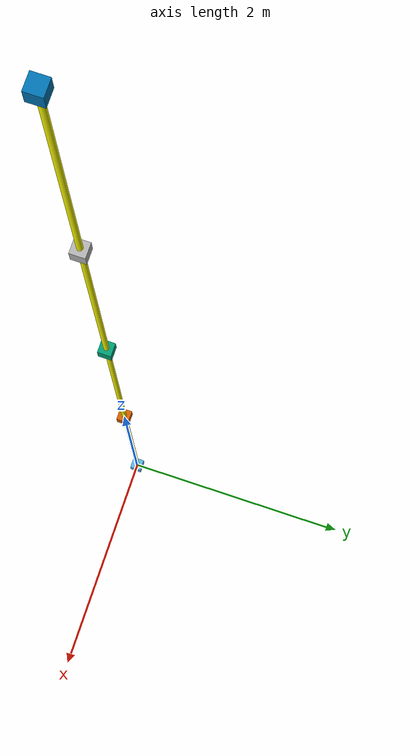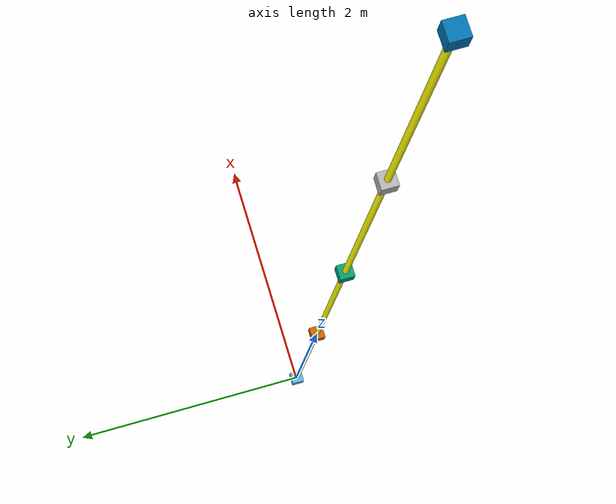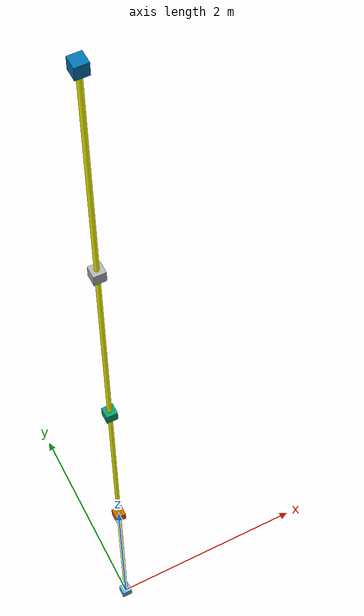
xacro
<?xml version="1.0"?>
<robot xmlns:xacro="http://www.ros.org/wiki/xacro" name="isaac_twin">

  <xacro:include filename="$(find isaac_sim_demo)/urdf/spherical_joint.xacro" />
  <xacro:include filename="$(find isaac_sim_demo)/urdf/link.xacro" />

  <!-- Include the cylinder macro -->
  <xacro:include filename="cylinder_macro.xacro" />

  <link name="base_link">
    <visual>
      <geometry>
        <box size="0.1 0.1 0"/>
      </geometry>
    </visual>
    <collision>
      <geometry>
        <box size="0.1 0.1 0"/>
      </geometry>
    </collision>
  </link>

  <xacro:spherical_joint prefix="spherical_1" parent="base_link" />

  <!-- Replace prismatic_joint_1 with a cylinder -->
  <xacro:cylinder_link parent_link="spherical_1_z" child_link="Drone1" prefix="cylinder1" cylinder_radius="0.02" cylinder_length="2"/>

  <xacro:temp_link name="Drone1" origin_xyz="0 0 0" origin_rpy="0 0 0" size="0.1 0.1 0.1" mass="0.1" />

  <xacro:spherical_joint prefix="spherical_2" parent="Drone1" />

  <!-- Replace prismatic_joint_2 with a cylinder -->
  <xacro:cylinder_link parent_link="spherical_2_z" child_link="Drone2" prefix="cylinder2" cylinder_radius="0.02" cylinder_length="2"/>

  <xacro:temp_link name="Drone2" origin_xyz="0 0 0" origin_rpy="0 0 0" size="0.1 0.1 0.1" mass="0.1" />

  <xacro:spherical_joint prefix="spherical_3" parent="Drone2" />

  <!-- Replace prismatic_joint_3 with a cylinder -->
  <xacro:cylinder_link parent_link="spherical_3_z" child_link="Drone3" prefix="cylinder3" cylinder_radius="0.02" cylinder_length="2"/>

  <xacro:temp_link name="Drone3" origin_xyz="0 0 0" origin_rpy="0 0 0" size="0.1 0.1 0.1" mass="0.1" />

  <xacro:spherical_joint prefix="spherical_4" parent="Drone3" />

  <!-- Replace prismatic_joint_4 with a cylinder -->
  <xacro:cylinder_link parent_link="spherical_4_z" child_link="Drone4" prefix="cylinder4" cylinder_radius="0.02" cylinder_length="2"/>

  <xacro:temp_link name="Drone4" origin_xyz="0 0 0" origin_rpy="0 0 0" size="0.1 0.1 0.1" mass="0.1" />

</robot>

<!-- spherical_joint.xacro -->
<robot xmlns:xacro="http://www.ros.org/wiki/xacro">
  <xacro:include filename="$(find isaac_sim_demo)/urdf/link.xacro" />

  <xacro:macro name="spherical_joint" params="prefix parent">

  <xacro:temp_link name="${prefix}_x" origin_xyz="0 0 0" origin_rpy="0 0 0" size="0.1 0.1 0.1" mass="0.1" />
  <xacro:temp_link name="${prefix}_y" origin_xyz="0 0 0" origin_rpy="0 0 0" size="0.1 0.1 0.1" mass="0.1" />
  <xacro:temp_link name="${prefix}_z" origin_xyz="0 0 0" origin_rpy="0 0 0" size="0.1 0.1 0.1" mass="0.1" />

  <joint name="${prefix}_x" type="revolute">
    <parent link="${parent}"/>
    <child link="${prefix}_x"/>
    <origin xyz="0 0 0.0" rpy="0 0 0"/>
    <axis xyz="1 0 0"/>
    <limit lower="-1.57" upper="1.57" effort="10" velocity="1.0"/>
  </joint>

  <joint name="${prefix}_y" type="revolute">
    <parent link="${prefix}_x"/>
    <child link="${prefix}_y"/>
    <origin xyz="0 0 0" rpy="0 0 0"/>
    <axis xyz="0 1 0"/>
    <limit lower="-1.57" upper="1.57" effort="10" velocity="1.0"/>
  </joint>

  <joint name="${prefix}_z" type="continuous">
    <parent link="${prefix}_y"/>
    <child link="${prefix}_z"/>
    <origin xyz="0 0 0" rpy="0 0 0"/>
    <axis xyz="0 0 1"/>
  </joint>
  </xacro:macro>

 </robot>

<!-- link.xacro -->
<robot xmlns:xacro="http://www.ros.org/wiki/xacro">

  <xacro:macro name="temp_link" params="name origin_xyz origin_rpy size mass ">

    <xacro:property name="dim" value="${size.split(' ')}"/>
    <xacro:property name="L" value="${dim[0]}"/>
    <xacro:property name="W" value="${dim[1]}"/>
    <xacro:property name="H" value="${dim[2]}"/>

    <!-- Calculate inertia tensor components -->
    <xacro:property name="Ixx" value="${(1/12.0) * mass * (W*W + H*H)}"/>
    <xacro:property name="Iyy" value="${(1/12.0) * mass * (L*L + H*H)}"/>
    <xacro:property name="Izz" value="${(1/12.0) * mass * (L*L + W*W)}"/>

    <link name="${name}">
      <inertial>
        <mass value="${mass}" />
        <origin rpy="${origin_rpy}" xyz="${origin_xyz}" />
        <inertia ixx="${Ixx}" ixy="0" ixz="0" iyy="${Iyy}" iyz="0" izz="${Izz}" />
      </inertial>
      <collision>
        <origin rpy="${origin_rpy}" xyz="${origin_xyz}" />
        <geometry>
          <box size="${size}"/>
        </geometry>
      </collision>
      <visual>
        <origin rpy="${origin_rpy}" xyz="${origin_xyz}" />
        <geometry>
          <box size="${size}"/>
        </geometry>
      </visual>
    </link>
  </xacro:macro>

</robot>

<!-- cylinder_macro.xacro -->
<robot xmlns:xacro="http://ros.org/wiki/xacro" name="cylinder_link_robot">

  <!-- Macro for a Cylindrical Link -->
  <xacro:macro name="cylinder_link" params="parent_link child_link prefix cylinder_radius cylinder_length">
    <link name="${prefix}_cylinder_link">
      <visual>
        <origin xyz="0 0 0" rpy="0 0 0"/>
        <geometry>
          <cylinder radius="${cylinder_radius}" length="${cylinder_length}"/>
        </geometry>
        <material name="yellow">
          <color rgba="1 1 0 1"/>
        </material>
      </visual>

      <!-- Collision element -->
      <collision>
        <origin xyz="0 0 0" rpy="0 0 0"/>
        <geometry>
          <cylinder radius="${cylinder_radius}" length="${cylinder_length}"/>
        </geometry>
      </collision>
    </link>

    <joint name="${prefix}_cylinder_joint" type="fixed">
      <parent link="${parent_link}"/>
      <child link="${prefix}_cylinder_link"/>
      <origin xyz="0 0 ${cylinder_length / 2}" rpy="0 0 0"/>
    </joint>

    <joint name="${prefix}_to_child_joint" type="fixed">
      <parent link="${prefix}_cylinder_link"/>
      <child link="${child_link}"/>
      <origin xyz="0 0 ${cylinder_length / 2}" rpy="0 0 0"/>
    </joint>
  </xacro:macro>

</robot>
